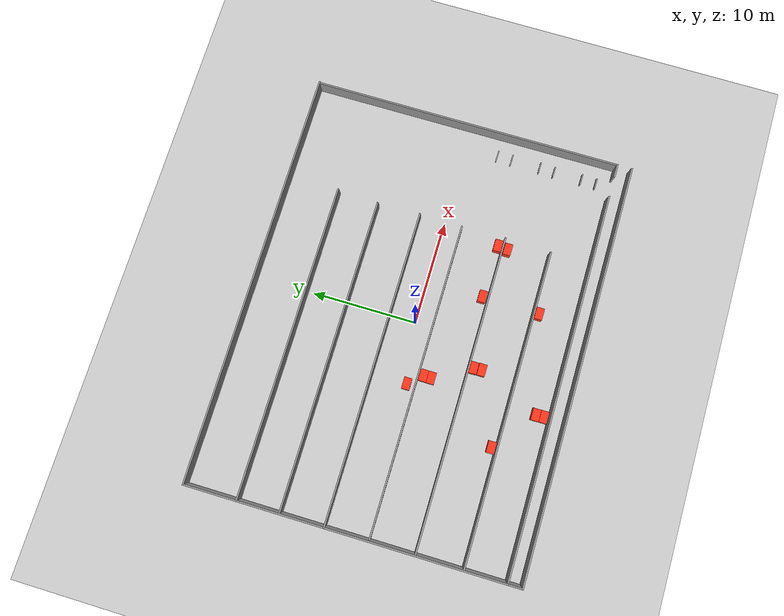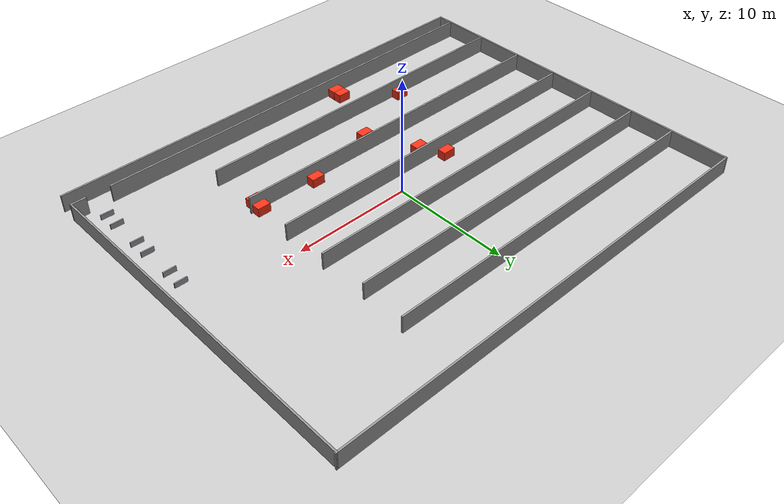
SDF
<sdf version="1.7">
 <world name="default">
  <model name="ground_plane">
   <static>1</static>
   <link name="link">
    <collision name="collision">
     <geometry><plane><normal>0 0 1</normal><size>100 100</size></plane></geometry>
     <surface>
      <contact><collide_bitmask>65535</collide_bitmask></contact>
      <friction>
       <ode><mu>200</mu><mu2>200</mu2><fdir1>0 0 0</fdir1><slip1>0</slip1><slip2>0</slip2></ode>
       <torsional>
        <coefficient>1</coefficient>
        <use_patch_radius>1</use_patch_radius>
        <patch_radius>0.1</patch_radius>
        <ode><slip>0</slip></ode>
       </torsional>
      </friction>
     </surface>
    </collision>
    <visual name="visual">
     <cast_shadows>0</cast_shadows>
     <geometry><plane><normal>0 0 1</normal><size>100 100</size></plane></geometry>
     <material>
      <script><uri>file://media/materials/scripts/gazebo.material</uri><name>Gazebo/Grey</name></script>
     </material>
    </visual>
   </link>
  </model>
  <model name="factory_depo">
   <pose>-0.011575 -0.0218 -0.015891 0 -0 0</pose>
   <link name="Wall_11">
    <pose>0.00391 -14.2501 0 0 -0 0.001782</pose>
    <visual name="Wall_11_Visual_0">
     <pose>-1.64591 0 0.75 0 -0 0</pose>
     <geometry><box><size>36.7082 0.15 1.5</size></box></geometry>
     <material>
      <script><uri>file://media/materials/scripts/gazebo.material</uri><name>Gazebo/Grey</name></script>
      <ambient>1 1 1 1</ambient>
     </material>
     <meta><layer>0</layer></meta>
    </visual>
    <collision name="Wall_11_Collision_0">
     <geometry><box><size>36.7082 0.15 1.5</size></box></geometry>
     <pose>-1.64591 0 0.75 0 -0 0</pose>
     <surface><friction><ode><mu>10</mu><mu2>10</mu2><slip1>0</slip1><slip2>0</slip2></ode></friction></surface>
    </collision>
    <visual name="Wall_11_Visual_1">
     <pose>19.3541 0 0.75 0 -0 0</pose>
     <geometry><box><size>1.29181 0.15 1.5</size></box></geometry>
     <material>
      <script><uri>file://media/materials/scripts/gazebo.material</uri><name>Gazebo/Grey</name></script>
      <ambient>1 1 1 1</ambient>
     </material>
     <meta><layer>0</layer></meta>
    </visual>
    <collision name="Wall_11_Collision_1">
     <geometry><box><size>1.29181 0.15 1.5</size></box></geometry>
     <pose>19.3541 0 0.75 0 -0 0</pose>
     <surface><friction><ode><mu>10</mu><mu2>10</mu2><slip1>0</slip1><slip2>0</slip2></ode></friction></surface>
    </collision>
   </link>
   <link name="Wall_13">
    <collision name="Wall_13_Collision">
     <geometry><box><size>30 0.15 1.5</size></box></geometry>
     <pose>0 0 0.75 0 -0 0</pose>
     <surface><friction><ode><mu>10</mu><mu2>10</mu2><slip1>0</slip1><slip2>0</slip2></ode></friction></surface>
    </collision>
    <visual name="Wall_13_Visual">
     <pose>0 0 0.75 0 -0 0</pose>
     <geometry><box><size>30 0.15 1.5</size></box></geometry>
     <material>
      <script><uri>file://media/materials/scripts/gazebo.material</uri><name>Gazebo/Grey</name></script>
      <ambient>1 1 1 1</ambient>
     </material>
     <meta><layer>0</layer></meta>
    </visual>
    <pose>19.8934 0.710432 0 0 -0 1.57317</pose>
   </link>
   <link name="Wall_15">
    <collision name="Wall_15_Collision">
     <geometry><box><size>40 0.15 1.5</size></box></geometry>
     <pose>0 0 0.75 0 -0 0</pose>
     <surface><friction><ode><mu>10</mu><mu2>10</mu2><slip1>0</slip1><slip2>0</slip2></ode></friction></surface>
    </collision>
    <visual name="Wall_15_Visual">
     <pose>0 0 0.75 0 -0 0</pose>
     <geometry><box><size>40 0.15 1.5</size></box></geometry>
     <material>
      <script><uri>file://media/materials/scripts/gazebo.material</uri><name>Gazebo/Grey</name></script>
      <ambient>1 1 1 1</ambient>
     </material>
     <meta><layer>0</layer></meta>
    </visual>
    <pose>0.00391 15.6354 0 0 -0 0</pose>
   </link>
   <link name="Wall_27">
    <collision name="Wall_27_Collision">
     <geometry><box><size>30 0.15 1.5</size></box></geometry>
     <pose>0 0 0.75 0 -0 0</pose>
     <surface><friction><ode><mu>10</mu><mu2>10</mu2><slip1>0</slip1><slip2>0</slip2></ode></friction></surface>
    </collision>
    <visual name="Wall_27_Visual">
     <pose>0 0 0.75 0 -0 0</pose>
     <geometry><box><size>30 0.15 1.5</size></box></geometry>
     <material>
      <script><uri>file://media/materials/scripts/gazebo.material</uri><name>Gazebo/Grey</name></script>
      <ambient>1 1 1 1</ambient>
     </material>
     <meta><layer>0</layer></meta>
    </visual>
    <pose>-4.88109 10.6354 0 0 -0 0</pose>
   </link>
   <link name="Wall_31">
    <collision name="Wall_31_Collision">
     <geometry><box><size>29.75 0.15 1.5</size></box></geometry>
     <pose>0 0 0.75 0 -0 0</pose>
     <surface><friction><ode><mu>10</mu><mu2>10</mu2><slip1>0</slip1><slip2>0</slip2></ode></friction></surface>
    </collision>
    <visual name="Wall_31_Visual">
     <pose>0 0 0.75 0 -0 0</pose>
     <geometry><box><size>29.75 0.15 1.5</size></box></geometry>
     <material>
      <script><uri>file://media/materials/scripts/gazebo.material</uri><name>Gazebo/Grey</name></script>
      <ambient>1 1 1 1</ambient>
     </material>
     <meta><layer>0</layer></meta>
    </visual>
    <pose>-4.96609 6.64743 0 0 -0 0</pose>
   </link>
   <link name="Wall_33">
    <collision name="Wall_33_Collision">
     <geometry><box><size>30 0.15 1.5</size></box></geometry>
     <pose>0 0 0.75 0 -0 0</pose>
     <surface><friction><ode><mu>10</mu><mu2>10</mu2><slip1>0</slip1><slip2>0</slip2></ode></friction></surface>
    </collision>
    <visual name="Wall_33_Visual">
     <pose>0 0 0.75 0 -0 0</pose>
     <geometry><box><size>30 0.15 1.5</size></box></geometry>
     <material>
      <script><uri>file://media/materials/scripts/gazebo.material</uri><name>Gazebo/Grey</name></script>
      <ambient>1 1 1 1</ambient>
     </material>
     <meta><layer>0</layer></meta>
    </visual>
    <pose>-5.00409 2.49743 0 0 -0 0</pose>
   </link>
   <link name="Wall_35">
    <collision name="Wall_35_Collision">
     <geometry><box><size>29.75 0.15 1.5</size></box></geometry>
     <pose>0 0 0.75 0 -0 0</pose>
     <surface><friction><ode><mu>10</mu><mu2>10</mu2><slip1>0</slip1><slip2>0</slip2></ode></friction></surface>
    </collision>
    <visual name="Wall_35_Visual">
     <pose>0 0 0.75 0 -0 0</pose>
     <geometry><box><size>29.75 0.15 1.5</size></box></geometry>
     <material>
      <script><uri>file://media/materials/scripts/gazebo.material</uri><name>Gazebo/Grey</name></script>
      <ambient>1 1 1 1</ambient>
     </material>
     <meta><layer>0</layer></meta>
    </visual>
    <pose>-4.92909 -1.64033 0 0 -0 0</pose>
   </link>
   <link name="Wall_38">
    <collision name="Wall_38_Collision">
     <geometry><box><size>30 0.15 1.5</size></box></geometry>
     <pose>0 0 0.75 0 -0 0</pose>
     <surface><friction><ode><mu>10</mu><mu2>10</mu2><slip1>0</slip1><slip2>0</slip2></ode></friction></surface>
    </collision>
    <visual name="Wall_38_Visual">
     <pose>0 0 0.75 0 -0 0</pose>
     <geometry><box><size>30 0.15 1.5</size></box></geometry>
     <material>
      <script><uri>file://media/materials/scripts/gazebo.material</uri><name>Gazebo/Grey</name></script>
      <ambient>1 1 1 1</ambient>
     </material>
     <meta><layer>0</layer></meta>
    </visual>
    <pose>-4.98909 -5.87657 0 0 -0 0</pose>
   </link>
   <link name="Wall_41">
    <collision name="Wall_41_Collision">
     <geometry><box><size>29.75 0.15 1.5</size></box></geometry>
     <pose>0 0 0.75 0 -0 0</pose>
     <surface><friction><ode><mu>10</mu><mu2>10</mu2><slip1>0</slip1><slip2>0</slip2></ode></friction></surface>
    </collision>
    <visual name="Wall_41_Visual">
     <pose>0 0 0.75 0 -0 0</pose>
     <geometry><box><size>29.75 0.15 1.5</size></box></geometry>
     <material>
      <script><uri>file://media/materials/scripts/gazebo.material</uri><name>Gazebo/Grey</name></script>
      <ambient>1 1 1 1</ambient>
     </material>
     <meta><layer>0</layer></meta>
    </visual>
    <pose>-4.99109 -10.3066 0 0 -0 0</pose>
   </link>
   <link name="Wall_43">
    <collision name="Wall_43_Collision">
     <geometry><box><size>1.5 0.15 1.5</size></box></geometry>
     <pose>0 0 0.75 0 -0 0</pose>
     <surface><friction><ode><mu>10</mu><mu2>10</mu2><slip1>0</slip1><slip2>0</slip2></ode></friction></surface>
    </collision>
    <visual name="Wall_43_Visual">
     <pose>0 0 0.75 0 -0 0</pose>
     <geometry><box><size>1.5 0.15 1.5</size></box></geometry>
     <material>
      <script><uri>file://media/materials/scripts/gazebo.material</uri><name>Gazebo/Grey</name></script>
      <ambient>1 1 1 1</ambient>
     </material>
     <meta><layer>0</layer></meta>
    </visual>
    <pose>-19.9211 -14.9606 0 0 -0 -1.5708</pose>
   </link>
   <link name="Wall_45">
    <collision name="Wall_45_Collision">
     <geometry><box><size>40 0.15 1.5</size></box></geometry>
     <pose>0 0 0.75 0 -0 0</pose>
     <surface><friction><ode><mu>10</mu><mu2>10</mu2><slip1>0</slip1><slip2>0</slip2></ode></friction></surface>
    </collision>
    <visual name="Wall_45_Visual">
     <pose>0 0 0.75 0 -0 0</pose>
     <geometry><box><size>40 0.15 1.5</size></box></geometry>
     <material>
      <script><uri>file://media/materials/scripts/gazebo.material</uri><name>Gazebo/Grey</name></script>
      <ambient>1 1 1 1</ambient>
     </material>
     <meta><layer>0</layer></meta>
    </visual>
    <pose>0.00391 -15.6356 0 0 -0 0</pose>
   </link>
   <link name="Wall_9">
    <collision name="Wall_9_Collision">
     <geometry><box><size>30.071 0.15 1.5</size></box></geometry>
     <pose>0 0 0.75 0 -0 0</pose>
     <surface><friction><ode><mu>10</mu><mu2>10</mu2><slip1>0</slip1><slip2>0</slip2></ode></friction></surface>
    </collision>
    <visual name="Wall_9_Visual">
     <pose>0 0 0.75 0 -0 0</pose>
     <geometry><box><size>30.071 0.15 1.5</size></box></geometry>
     <material>
      <script><uri>file://media/materials/scripts/gazebo.material</uri><name>Gazebo/Grey</name></script>
      <ambient>1 1 1 1</ambient>
     </material>
     <meta><layer>0</layer></meta>
    </visual>
    <pose>-19.9211 0.674932 0 0 -0 1.5708</pose>
   </link>
   <static>1</static>
  </model>
  <model name="payload_box_clone_5">
   <link name="link">
    <inertial>
     <mass>15</mass>
     <inertia><ixx>2.32332</ixx><ixy>0</ixy><ixz>0</ixz><iyy>1.43272</iyy><iyz>0</iyz><izz>2.2858</izz></inertia>
    </inertial>
    <visual name="visual">
     <geometry><box><size>0.747047 1.12719 0.766877</size></box></geometry>
     <material>
      <script><name>Gazebo/Grey</name><uri>file://media/materials/scripts/gazebo.material</uri></script>
      <shader type="pixel"><normal_map>__default__</normal_map></shader>
      <ambient>1 0.2 0.1 0</ambient>
      <diffuse>0.7 0.7 0.7 1</diffuse>
      <specular>0.01 0.01 0.01 1</specular>
      <emissive>0 0 0 1</emissive>
     </material>
    </visual>
    <collision name="collision">
     <geometry><box><size>0.747047 1.12719 0.766877</size></box></geometry>
     <surface>
      <friction>
       <ode><mu>1</mu><mu2>1</mu2><fdir1>0 0 0</fdir1><slip1>0</slip1><slip2>0</slip2></ode>
       <torsional>
        <coefficient>1</coefficient>
        <patch_radius>0</patch_radius>
        <surface_radius>0</surface_radius>
        <use_patch_radius>1</use_patch_radius>
        <ode><slip>0</slip></ode>
       </torsional>
      </friction>
      <bounce><restitution_coefficient>0</restitution_coefficient><threshold>1e+06</threshold></bounce>
      <contact>
       <collide_without_contact>0</collide_without_contact>
       <collide_without_contact_bitmask>1</collide_without_contact_bitmask>
       <collide_bitmask>1</collide_bitmask>
       <ode>
        <soft_cfm>0</soft_cfm>
        <soft_erp>0.2</soft_erp>
        <kp>1e+13</kp>
        <kd>1</kd>
        <max_vel>0.01</max_vel>
        <min_depth>0</min_depth>
       </ode>
       <bullet>
        <split_impulse>1</split_impulse>
        <split_impulse_penetration_threshold>-0.01</split_impulse_penetration_threshold>
        <soft_cfm>0</soft_cfm>
        <soft_erp>0.2</soft_erp>
        <kp>1e+13</kp>
        <kd>1</kd>
       </bullet>
      </contact>
     </surface>
    </collision>
   </link>
   <static>0</static>
   <pose>-5.04823 -13.7583 0.383438 0 -0 1.5709</pose>
  </model>
  <model name="payload_box_clone_5_clone">
   <link name="link">
    <inertial>
     <mass>15</mass>
     <inertia><ixx>2.32332</ixx><ixy>0</ixy><ixz>0</ixz><iyy>1.43272</iyy><iyz>0</iyz><izz>2.2858</izz></inertia>
    </inertial>
    <visual name="visual">
     <geometry><box><size>0.747047 1.12719 0.766877</size></box></geometry>
     <material>
      <script><name>Gazebo/Grey</name><uri>file://media/materials/scripts/gazebo.material</uri></script>
      <shader type="pixel"><normal_map>__default__</normal_map></shader>
      <ambient>1 0.2 0.1 0</ambient>
      <diffuse>0.7 0.7 0.7 1</diffuse>
      <specular>0.01 0.01 0.01 1</specular>
      <emissive>0 0 0 1</emissive>
     </material>
    </visual>
    <collision name="collision">
     <geometry><box><size>0.747047 1.12719 0.766877</size></box></geometry>
     <surface>
      <friction>
       <ode><mu>1</mu><mu2>1</mu2><fdir1>0 0 0</fdir1><slip1>0</slip1><slip2>0</slip2></ode>
       <torsional>
        <coefficient>1</coefficient>
        <patch_radius>0</patch_radius>
        <surface_radius>0</surface_radius>
        <use_patch_radius>1</use_patch_radius>
        <ode><slip>0</slip></ode>
       </torsional>
      </friction>
      <bounce><restitution_coefficient>0</restitution_coefficient><threshold>1e+06</threshold></bounce>
      <contact>
       <collide_without_contact>0</collide_without_contact>
       <collide_without_contact_bitmask>1</collide_without_contact_bitmask>
       <collide_bitmask>1</collide_bitmask>
       <ode>
        <soft_cfm>0</soft_cfm>
        <soft_erp>0.2</soft_erp>
        <kp>1e+13</kp>
        <kd>1</kd>
        <max_vel>0.01</max_vel>
        <min_depth>0</min_depth>
       </ode>
       <bullet>
        <split_impulse>1</split_impulse>
        <split_impulse_penetration_threshold>-0.01</split_impulse_penetration_threshold>
        <soft_cfm>0</soft_cfm>
        <soft_erp>0.2</soft_erp>
        <kp>1e+13</kp>
        <kd>1</kd>
       </bullet>
      </contact>
     </surface>
    </collision>
   </link>
   <static>0</static>
   <pose>-5.06235 -13.0022 0.383438 0 -0 1.5709</pose>
  </model>
  <model name="payload_box_clone_5_clone_0">
   <link name="link">
    <inertial>
     <mass>15</mass>
     <inertia><ixx>2.32332</ixx><ixy>0</ixy><ixz>0</ixz><iyy>1.43272</iyy><iyz>0</iyz><izz>2.2858</izz></inertia>
    </inertial>
    <visual name="visual">
     <geometry><box><size>0.747047 1.12719 0.766877</size></box></geometry>
     <material>
      <script><name>Gazebo/Grey</name><uri>file://media/materials/scripts/gazebo.material</uri></script>
      <shader type="pixel"><normal_map>__default__</normal_map></shader>
      <ambient>1 0.2 0.1 0</ambient>
      <diffuse>0.7 0.7 0.7 1</diffuse>
      <specular>0.01 0.01 0.01 1</specular>
      <emissive>0 0 0 1</emissive>
     </material>
    </visual>
    <collision name="collision">
     <geometry><box><size>0.747047 1.12719 0.766877</size></box></geometry>
     <surface>
      <friction>
       <ode><mu>1</mu><mu2>1</mu2><fdir1>0 0 0</fdir1><slip1>0</slip1><slip2>0</slip2></ode>
       <torsional>
        <coefficient>1</coefficient>
        <patch_radius>0</patch_radius>
        <surface_radius>0</surface_radius>
        <use_patch_radius>1</use_patch_radius>
        <ode><slip>0</slip></ode>
       </torsional>
      </friction>
      <bounce><restitution_coefficient>0</restitution_coefficient><threshold>1e+06</threshold></bounce>
      <contact>
       <collide_without_contact>0</collide_without_contact>
       <collide_without_contact_bitmask>1</collide_without_contact_bitmask>
       <collide_bitmask>1</collide_bitmask>
       <ode>
        <soft_cfm>0</soft_cfm>
        <soft_erp>0.2</soft_erp>
        <kp>1e+13</kp>
        <kd>1</kd>
        <max_vel>0.01</max_vel>
        <min_depth>0</min_depth>
       </ode>
       <bullet>
        <split_impulse>1</split_impulse>
        <split_impulse_penetration_threshold>-0.01</split_impulse_penetration_threshold>
        <soft_cfm>0</soft_cfm>
        <soft_erp>0.2</soft_erp>
        <kp>1e+13</kp>
        <kd>1</kd>
       </bullet>
      </contact>
     </surface>
    </collision>
   </link>
   <static>0</static>
   <pose>4.06717 -10.8872 0.383438 0 -0 1.5709</pose>
  </model>
  <model name="payload_box_clone_5_clone_2">
   <link name="link">
    <inertial>
     <mass>15</mass>
     <inertia><ixx>2.32332</ixx><ixy>0</ixy><ixz>0</ixz><iyy>1.43272</iyy><iyz>0</iyz><izz>2.2858</izz></inertia>
    </inertial>
    <visual name="visual">
     <geometry><box><size>0.747047 1.12719 0.766877</size></box></geometry>
     <material>
      <script><name>Gazebo/Grey</name><uri>file://media/materials/scripts/gazebo.material</uri></script>
      <shader type="pixel"><normal_map>__default__</normal_map></shader>
      <ambient>1 0.2 0.1 0</ambient>
      <diffuse>0.7 0.7 0.7 1</diffuse>
      <specular>0.01 0.01 0.01 1</specular>
      <emissive>0 0 0 1</emissive>
     </material>
    </visual>
    <collision name="collision">
     <geometry><box><size>0.747047 1.12719 0.766877</size></box></geometry>
     <surface>
      <friction>
       <ode><mu>1</mu><mu2>1</mu2><fdir1>0 0 0</fdir1><slip1>0</slip1><slip2>0</slip2></ode>
       <torsional>
        <coefficient>1</coefficient>
        <patch_radius>0</patch_radius>
        <surface_radius>0</surface_radius>
        <use_patch_radius>1</use_patch_radius>
        <ode><slip>0</slip></ode>
       </torsional>
      </friction>
      <bounce><restitution_coefficient>0</restitution_coefficient><threshold>1e+06</threshold></bounce>
      <contact>
       <collide_without_contact>0</collide_without_contact>
       <collide_without_contact_bitmask>1</collide_without_contact_bitmask>
       <collide_bitmask>1</collide_bitmask>
       <ode>
        <soft_cfm>0</soft_cfm>
        <soft_erp>0.2</soft_erp>
        <kp>1e+13</kp>
        <kd>1</kd>
        <max_vel>0.01</max_vel>
        <min_depth>0</min_depth>
       </ode>
       <bullet>
        <split_impulse>1</split_impulse>
        <split_impulse_penetration_threshold>-0.01</split_impulse_penetration_threshold>
        <soft_cfm>0</soft_cfm>
        <soft_erp>0.2</soft_erp>
        <kp>1e+13</kp>
        <kd>1</kd>
       </bullet>
      </contact>
     </surface>
    </collision>
   </link>
   <static>0</static>
   <pose>-9.04688 -9.87984 0.383438 0 -0 1.57085</pose>
  </model>
  <model name="payload_box_clone_5_clone_3">
   <link name="link">
    <inertial>
     <mass>15</mass>
     <inertia><ixx>2.32332</ixx><ixy>0</ixy><ixz>0</ixz><iyy>1.43272</iyy><iyz>0</iyz><izz>2.2858</izz></inertia>
    </inertial>
    <visual name="visual">
     <geometry><box><size>0.747047 1.12719 0.766877</size></box></geometry>
     <material>
      <script><name>Gazebo/Grey</name><uri>file://media/materials/scripts/gazebo.material</uri></script>
      <shader type="pixel"><normal_map>__default__</normal_map></shader>
      <ambient>1 0.2 0.1 0</ambient>
      <diffuse>0.7 0.7 0.7 1</diffuse>
      <specular>0.01 0.01 0.01 1</specular>
      <emissive>0 0 0 1</emissive>
     </material>
    </visual>
    <collision name="collision">
     <geometry><box><size>0.747047 1.12719 0.766877</size></box></geometry>
     <surface>
      <friction>
       <ode><mu>1</mu><mu2>1</mu2><fdir1>0 0 0</fdir1><slip1>0</slip1><slip2>0</slip2></ode>
       <torsional>
        <coefficient>1</coefficient>
        <patch_radius>0</patch_radius>
        <surface_radius>0</surface_radius>
        <use_patch_radius>1</use_patch_radius>
        <ode><slip>0</slip></ode>
       </torsional>
      </friction>
      <bounce><restitution_coefficient>0</restitution_coefficient><threshold>1e+06</threshold></bounce>
      <contact>
       <collide_without_contact>0</collide_without_contact>
       <collide_without_contact_bitmask>1</collide_without_contact_bitmask>
       <collide_bitmask>1</collide_bitmask>
       <ode>
        <soft_cfm>0</soft_cfm>
        <soft_erp>0.2</soft_erp>
        <kp>1e+13</kp>
        <kd>1</kd>
        <max_vel>0.01</max_vel>
        <min_depth>0</min_depth>
       </ode>
       <bullet>
        <split_impulse>1</split_impulse>
        <split_impulse_penetration_threshold>-0.01</split_impulse_penetration_threshold>
        <soft_cfm>0</soft_cfm>
        <soft_erp>0.2</soft_erp>
        <kp>1e+13</kp>
        <kd>1</kd>
       </bullet>
      </contact>
     </surface>
    </collision>
   </link>
   <static>0</static>
   <pose>-2.54038 -6.392 0.383438 0 -0 1.5709</pose>
  </model>
  <model name="payload_box_clone_5_clone_4">
   <link name="link">
    <inertial>
     <mass>15</mass>
     <inertia><ixx>2.32332</ixx><ixy>0</ixy><ixz>0</ixz><iyy>1.43272</iyy><iyz>0</iyz><izz>2.2858</izz></inertia>
    </inertial>
    <visual name="visual">
     <geometry><box><size>0.747047 1.12719 0.766877</size></box></geometry>
     <material>
      <script><name>Gazebo/Grey</name><uri>file://media/materials/scripts/gazebo.material</uri></script>
      <shader type="pixel"><normal_map>__default__</normal_map></shader>
      <ambient>1 0.2 0.1 0</ambient>
      <diffuse>0.7 0.7 0.7 1</diffuse>
      <specular>0.01 0.01 0.01 1</specular>
      <emissive>0 0 0 1</emissive>
     </material>
    </visual>
    <collision name="collision">
     <geometry><box><size>0.747047 1.12719 0.766877</size></box></geometry>
     <surface>
      <friction>
       <ode><mu>1</mu><mu2>1</mu2><fdir1>0 0 0</fdir1><slip1>0</slip1><slip2>0</slip2></ode>
       <torsional>
        <coefficient>1</coefficient>
        <patch_radius>0</patch_radius>
        <surface_radius>0</surface_radius>
        <use_patch_radius>1</use_patch_radius>
        <ode><slip>0</slip></ode>
       </torsional>
      </friction>
      <bounce><restitution_coefficient>0</restitution_coefficient><threshold>1e+06</threshold></bounce>
      <contact>
       <collide_without_contact>0</collide_without_contact>
       <collide_without_contact_bitmask>1</collide_without_contact_bitmask>
       <collide_bitmask>1</collide_bitmask>
       <ode>
        <soft_cfm>0</soft_cfm>
        <soft_erp>0.2</soft_erp>
        <kp>1e+13</kp>
        <kd>1</kd>
        <max_vel>0.01</max_vel>
        <min_depth>0</min_depth>
       </ode>
       <bullet>
        <split_impulse>1</split_impulse>
        <split_impulse_penetration_threshold>-0.01</split_impulse_penetration_threshold>
        <soft_cfm>0</soft_cfm>
        <soft_erp>0.2</soft_erp>
        <kp>1e+13</kp>
        <kd>1</kd>
       </bullet>
      </contact>
     </surface>
    </collision>
   </link>
   <static>0</static>
   <pose>-2.51466 -7.17386 0.383438 0 -0 1.5709</pose>
  </model>
  <model name="payload_box_clone_5_clone_5">
   <link name="link">
    <inertial>
     <mass>15</mass>
     <inertia><ixx>2.32332</ixx><ixy>0</ixy><ixz>0</ixz><iyy>1.43272</iyy><iyz>0</iyz><izz>2.2858</izz></inertia>
    </inertial>
    <visual name="visual">
     <geometry><box><size>0.747047 1.12719 0.766877</size></box></geometry>
     <material>
      <script><name>Gazebo/Grey</name><uri>file://media/materials/scripts/gazebo.material</uri></script>
      <shader type="pixel"><normal_map>__default__</normal_map></shader>
      <ambient>1 0.2 0.1 0</ambient>
      <diffuse>0.7 0.7 0.7 1</diffuse>
      <specular>0.01 0.01 0.01 1</specular>
      <emissive>0 0 0 1</emissive>
     </material>
    </visual>
    <collision name="collision">
     <geometry><box><size>0.747047 1.12719 0.766877</size></box></geometry>
     <surface>
      <friction>
       <ode><mu>1</mu><mu2>1</mu2><fdir1>0 0 0</fdir1><slip1>0</slip1><slip2>0</slip2></ode>
       <torsional>
        <coefficient>1</coefficient>
        <patch_radius>0</patch_radius>
        <surface_radius>0</surface_radius>
        <use_patch_radius>1</use_patch_radius>
        <ode><slip>0</slip></ode>
       </torsional>
      </friction>
      <bounce><restitution_coefficient>0</restitution_coefficient><threshold>1e+06</threshold></bounce>
      <contact>
       <collide_without_contact>0</collide_without_contact>
       <collide_without_contact_bitmask>1</collide_without_contact_bitmask>
       <collide_bitmask>1</collide_bitmask>
       <ode>
        <soft_cfm>0</soft_cfm>
        <soft_erp>0.2</soft_erp>
        <kp>1e+13</kp>
        <kd>1</kd>
        <max_vel>0.01</max_vel>
        <min_depth>0</min_depth>
       </ode>
       <bullet>
        <split_impulse>1</split_impulse>
        <split_impulse_penetration_threshold>-0.01</split_impulse_penetration_threshold>
        <soft_cfm>0</soft_cfm>
        <soft_erp>0.2</soft_erp>
        <kp>1e+13</kp>
        <kd>1</kd>
       </bullet>
      </contact>
     </surface>
    </collision>
   </link>
   <static>0</static>
   <pose>9.18464 -6.43208 0.383438 0 -0 1.5709</pose>
  </model>
  <model name="payload_box_clone_5_clone_6">
   <link name="link">
    <inertial>
     <mass>15</mass>
     <inertia><ixx>2.32332</ixx><ixy>0</ixy><ixz>0</ixz><iyy>1.43272</iyy><iyz>0</iyz><izz>2.2858</izz></inertia>
    </inertial>
    <visual name="visual">
     <geometry><box><size>0.747047 1.12719 0.766877</size></box></geometry>
     <material>
      <script><name>Gazebo/Grey</name><uri>file://media/materials/scripts/gazebo.material</uri></script>
      <shader type="pixel"><normal_map>__default__</normal_map></shader>
      <ambient>1 0.2 0.1 0</ambient>
      <diffuse>0.7 0.7 0.7 1</diffuse>
      <specular>0.01 0.01 0.01 1</specular>
      <emissive>0 0 0 1</emissive>
     </material>
    </visual>
    <collision name="collision">
     <geometry><box><size>0.747047 1.12719 0.766877</size></box></geometry>
     <surface>
      <friction>
       <ode><mu>1</mu><mu2>1</mu2><fdir1>0 0 0</fdir1><slip1>0</slip1><slip2>0</slip2></ode>
       <torsional>
        <coefficient>1</coefficient>
        <patch_radius>0</patch_radius>
        <surface_radius>0</surface_radius>
        <use_patch_radius>1</use_patch_radius>
        <ode><slip>0</slip></ode>
       </torsional>
      </friction>
      <bounce><restitution_coefficient>0</restitution_coefficient><threshold>1e+06</threshold></bounce>
      <contact>
       <collide_without_contact>0</collide_without_contact>
       <collide_without_contact_bitmask>1</collide_without_contact_bitmask>
       <collide_bitmask>1</collide_bitmask>
       <ode>
        <soft_cfm>0</soft_cfm>
        <soft_erp>0.2</soft_erp>
        <kp>1e+13</kp>
        <kd>1</kd>
        <max_vel>0.01</max_vel>
        <min_depth>0</min_depth>
       </ode>
       <bullet>
        <split_impulse>1</split_impulse>
        <split_impulse_penetration_threshold>-0.01</split_impulse_penetration_threshold>
        <soft_cfm>0</soft_cfm>
        <soft_erp>0.2</soft_erp>
        <kp>1e+13</kp>
        <kd>1</kd>
       </bullet>
      </contact>
     </surface>
    </collision>
   </link>
   <static>0</static>
   <pose>9.28894 -5.44985 0.383438 0 -0 1.57077</pose>
  </model>
  <model name="payload_box_clone_5_clone_7">
   <link name="link">
    <inertial>
     <mass>15</mass>
     <inertia><ixx>2.32332</ixx><ixy>0</ixy><ixz>0</ixz><iyy>1.43272</iyy><iyz>0</iyz><izz>2.2858</izz></inertia>
    </inertial>
    <visual name="visual">
     <geometry><box><size>0.747047 1.12719 0.766877</size></box></geometry>
     <material>
      <script><name>Gazebo/Grey</name><uri>file://media/materials/scripts/gazebo.material</uri></script>
      <shader type="pixel"><normal_map>__default__</normal_map></shader>
      <ambient>1 0.2 0.1 0</ambient>
      <diffuse>0.7 0.7 0.7 1</diffuse>
      <specular>0.01 0.01 0.01 1</specular>
      <emissive>0 0 0 1</emissive>
     </material>
    </visual>
    <collision name="collision">
     <geometry><box><size>0.747047 1.12719 0.766877</size></box></geometry>
     <surface>
      <friction>
       <ode><mu>1</mu><mu2>1</mu2><fdir1>0 0 0</fdir1><slip1>0</slip1><slip2>0</slip2></ode>
       <torsional>
        <coefficient>1</coefficient>
        <patch_radius>0</patch_radius>
        <surface_radius>0</surface_radius>
        <use_patch_radius>1</use_patch_radius>
        <ode><slip>0</slip></ode>
       </torsional>
      </friction>
      <bounce><restitution_coefficient>0</restitution_coefficient><threshold>1e+06</threshold></bounce>
      <contact>
       <collide_without_contact>0</collide_without_contact>
       <collide_without_contact_bitmask>1</collide_without_contact_bitmask>
       <collide_bitmask>1</collide_bitmask>
       <ode>
        <soft_cfm>0</soft_cfm>
        <soft_erp>0.2</soft_erp>
        <kp>1e+13</kp>
        <kd>1</kd>
        <max_vel>0.01</max_vel>
        <min_depth>0</min_depth>
       </ode>
       <bullet>
        <split_impulse>1</split_impulse>
        <split_impulse_penetration_threshold>-0.01</split_impulse_penetration_threshold>
        <soft_cfm>0</soft_cfm>
        <soft_erp>0.2</soft_erp>
        <kp>1e+13</kp>
        <kd>1</kd>
       </bullet>
      </contact>
     </surface>
    </collision>
   </link>
   <static>0</static>
   <pose>4.14763 -5.3569 0.383438 0 -0 1.5709</pose>
  </model>
  <model name="payload_box_clone_5_clone_8">
   <link name="link">
    <inertial>
     <mass>15</mass>
     <inertia><ixx>2.32332</ixx><ixy>0</ixy><ixz>0</ixz><iyy>1.43272</iyy><iyz>0</iyz><izz>2.2858</izz></inertia>
    </inertial>
    <visual name="visual">
     <geometry><box><size>0.747047 1.12719 0.766877</size></box></geometry>
     <material>
      <script><name>Gazebo/Grey</name><uri>file://media/materials/scripts/gazebo.material</uri></script>
      <shader type="pixel"><normal_map>__default__</normal_map></shader>
      <ambient>1 0.2 0.1 0</ambient>
      <diffuse>0.7 0.7 0.7 1</diffuse>
      <specular>0.01 0.01 0.01 1</specular>
      <emissive>0 0 0 1</emissive>
     </material>
    </visual>
    <collision name="collision">
     <geometry><box><size>0.747047 1.12719 0.766877</size></box></geometry>
     <surface>
      <friction>
       <ode><mu>1</mu><mu2>1</mu2><fdir1>0 0 0</fdir1><slip1>0</slip1><slip2>0</slip2></ode>
       <torsional>
        <coefficient>1</coefficient>
        <patch_radius>0</patch_radius>
        <surface_radius>0</surface_radius>
        <use_patch_radius>1</use_patch_radius>
        <ode><slip>0</slip></ode>
       </torsional>
      </friction>
      <bounce><restitution_coefficient>0</restitution_coefficient><threshold>1e+06</threshold></bounce>
      <contact>
       <collide_without_contact>0</collide_without_contact>
       <collide_without_contact_bitmask>1</collide_without_contact_bitmask>
       <collide_bitmask>1</collide_bitmask>
       <ode>
        <soft_cfm>0</soft_cfm>
        <soft_erp>0.2</soft_erp>
        <kp>1e+13</kp>
        <kd>1</kd>
        <max_vel>0.01</max_vel>
        <min_depth>0</min_depth>
       </ode>
       <bullet>
        <split_impulse>1</split_impulse>
        <split_impulse_penetration_threshold>-0.01</split_impulse_penetration_threshold>
        <soft_cfm>0</soft_cfm>
        <soft_erp>0.2</soft_erp>
        <kp>1e+13</kp>
        <kd>1</kd>
       </bullet>
      </contact>
     </surface>
    </collision>
   </link>
   <static>0</static>
   <pose>-4.5286 -2.14477 0.383438 0 -0 1.57055</pose>
  </model>
  <model name="payload_box_clone_5_clone_9">
   <link name="link">
    <inertial>
     <mass>15</mass>
     <inertia><ixx>2.32332</ixx><ixy>0</ixy><ixz>0</ixz><iyy>1.43272</iyy><iyz>0</iyz><izz>2.2858</izz></inertia>
    </inertial>
    <visual name="visual">
     <geometry><box><size>0.747047 1.12719 0.766877</size></box></geometry>
     <material>
      <script><name>Gazebo/Grey</name><uri>file://media/materials/scripts/gazebo.material</uri></script>
      <shader type="pixel"><normal_map>__default__</normal_map></shader>
      <ambient>1 0.2 0.1 0</ambient>
      <diffuse>0.7 0.7 0.7 1</diffuse>
      <specular>0.01 0.01 0.01 1</specular>
      <emissive>0 0 0 1</emissive>
     </material>
    </visual>
    <collision name="collision">
     <geometry><box><size>0.747047 1.12719 0.766877</size></box></geometry>
     <surface>
      <friction>
       <ode><mu>1</mu><mu2>1</mu2><fdir1>0 0 0</fdir1><slip1>0</slip1><slip2>0</slip2></ode>
       <torsional>
        <coefficient>1</coefficient>
        <patch_radius>0</patch_radius>
        <surface_radius>0</surface_radius>
        <use_patch_radius>1</use_patch_radius>
        <ode><slip>0</slip></ode>
       </torsional>
      </friction>
      <bounce><restitution_coefficient>0</restitution_coefficient><threshold>1e+06</threshold></bounce>
      <contact>
       <collide_without_contact>0</collide_without_contact>
       <collide_without_contact_bitmask>1</collide_without_contact_bitmask>
       <collide_bitmask>1</collide_bitmask>
       <ode>
        <soft_cfm>0</soft_cfm>
        <soft_erp>0.2</soft_erp>
        <kp>1e+13</kp>
        <kd>1</kd>
        <max_vel>0.01</max_vel>
        <min_depth>0</min_depth>
       </ode>
       <bullet>
        <split_impulse>1</split_impulse>
        <split_impulse_penetration_threshold>-0.01</split_impulse_penetration_threshold>
        <soft_cfm>0</soft_cfm>
        <soft_erp>0.2</soft_erp>
        <kp>1e+13</kp>
        <kd>1</kd>
       </bullet>
      </contact>
     </surface>
    </collision>
   </link>
   <static>0</static>
   <pose>-4.53812 -2.89186 0.383438 0 -0 1.57051</pose>
  </model>
  <model name="payload_box_clone_5_clone_12">
   <link name="link">
    <inertial>
     <mass>15</mass>
     <inertia><ixx>2.32332</ixx><ixy>0</ixy><ixz>0</ixz><iyy>1.43272</iyy><iyz>0</iyz><izz>2.2858</izz></inertia>
    </inertial>
    <visual name="visual">
     <geometry><box><size>0.747047 1.12719 0.766877</size></box></geometry>
     <material>
      <script><name>Gazebo/Grey</name><uri>file://media/materials/scripts/gazebo.material</uri></script>
      <shader type="pixel"><normal_map>__default__</normal_map></shader>
      <ambient>1 0.2 0.1 0</ambient>
      <diffuse>0.7 0.7 0.7 1</diffuse>
      <specular>0.01 0.01 0.01 1</specular>
      <emissive>0 0 0 1</emissive>
     </material>
    </visual>
    <collision name="collision">
     <geometry><box><size>0.747047 1.12719 0.766877</size></box></geometry>
     <surface>
      <friction>
       <ode><mu>1</mu><mu2>1</mu2><fdir1>0 0 0</fdir1><slip1>0</slip1><slip2>0</slip2></ode>
       <torsional>
        <coefficient>1</coefficient>
        <patch_radius>0</patch_radius>
        <surface_radius>0</surface_radius>
        <use_patch_radius>1</use_patch_radius>
        <ode><slip>0</slip></ode>
       </torsional>
      </friction>
      <bounce><restitution_coefficient>0</restitution_coefficient><threshold>1e+06</threshold></bounce>
      <contact>
       <collide_without_contact>0</collide_without_contact>
       <collide_without_contact_bitmask>1</collide_without_contact_bitmask>
       <collide_bitmask>1</collide_bitmask>
       <ode>
        <soft_cfm>0</soft_cfm>
        <soft_erp>0.2</soft_erp>
        <kp>1e+13</kp>
        <kd>1</kd>
        <max_vel>0.01</max_vel>
        <min_depth>0</min_depth>
       </ode>
       <bullet>
        <split_impulse>1</split_impulse>
        <split_impulse_penetration_threshold>-0.01</split_impulse_penetration_threshold>
        <soft_cfm>0</soft_cfm>
        <soft_erp>0.2</soft_erp>
        <kp>1e+13</kp>
        <kd>1</kd>
       </bullet>
      </contact>
     </surface>
    </collision>
   </link>
   <static>0</static>
   <pose>-5.67721 -0.873075 0.383438 0 -0 1.5709</pose>
  </model>
  <model name="stand_1_clone_4_legs_clone">
   <static>1</static>
   <link name="walls_link">
    <collision name="left_wall_col">
     <pose>0.72 0 0.225 0 -0 0</pose>
     <geometry><box><size>0.1 1.06 0.45</size></box></geometry>
     <surface><friction><ode><mu>10</mu><mu2>10</mu2><slip1>0</slip1><slip2>0</slip2></ode></friction></surface>
    </collision>
    <visual name="left_wall_vis">
     <pose>0.72 0 0.225 0 -0 0</pose>
     <geometry><box><size>0.1 1.06 0.45</size></box></geometry>
     <material>
      <ambient>0.6 0.6 0.63 1</ambient>
      <diffuse>0.6 0.6 0.63 1</diffuse>
      <specular>0.3 0.3 0.3 1</specular>
     </material>
    </visual>
    <collision name="right_wall_col">
     <pose>-0.72 0 0.225 0 -0 0</pose>
     <geometry><box><size>0.1 1.06 0.45</size></box></geometry>
     <surface><friction><ode><mu>10</mu><mu2>10</mu2><slip1>0</slip1><slip2>0</slip2></ode></friction></surface>
    </collision>
    <visual name="right_wall_vis">
     <pose>-0.72 0 0.225 0 -0 0</pose>
     <geometry><box><size>0.1 1.06 0.45</size></box></geometry>
     <material>
      <ambient>0.6 0.6 0.63 1</ambient>
      <diffuse>0.6 0.6 0.63 1</diffuse>
      <specular>0.3 0.3 0.3 1</specular>
     </material>
    </visual>
    <inertial>
     <mass>25</mass>
     <inertia><ixx>1.4</ixx><iyy>2.1</iyy><izz>3.2</izz><ixy>0</ixy><ixz>0</ixz><iyz>0</iyz></inertia>
    </inertial>
   </link>
   <pose>18 -12.15 0 3e-06 3e-06 -1.58716</pose>
  </model>
  <model name="stand_1_clone_3_legs_clone">
   <static>1</static>
   <link name="walls_link">
    <collision name="left_wall_col">
     <pose>0.72 0 0.225 0 -0 0</pose>
     <geometry><box><size>0.1 1.06 0.45</size></box></geometry>
     <surface><friction><ode><mu>10</mu><mu2>10</mu2><slip1>0</slip1><slip2>0</slip2></ode></friction></surface>
    </collision>
    <visual name="left_wall_vis">
     <pose>0.72 0 0.225 0 -0 0</pose>
     <geometry><box><size>0.1 1.06 0.45</size></box></geometry>
     <material>
      <ambient>0.6 0.6 0.63 1</ambient>
      <diffuse>0.6 0.6 0.63 1</diffuse>
      <specular>0.3 0.3 0.3 1</specular>
     </material>
    </visual>
    <collision name="right_wall_col">
     <pose>-0.72 0 0.225 0 -0 0</pose>
     <geometry><box><size>0.1 1.06 0.45</size></box></geometry>
     <surface><friction><ode><mu>10</mu><mu2>10</mu2><slip1>0</slip1><slip2>0</slip2></ode></friction></surface>
    </collision>
    <visual name="right_wall_vis">
     <pose>-0.72 0 0.225 0 -0 0</pose>
     <geometry><box><size>0.1 1.06 0.45</size></box></geometry>
     <material>
      <ambient>0.6 0.6 0.63 1</ambient>
      <diffuse>0.6 0.6 0.63 1</diffuse>
      <specular>0.3 0.3 0.3 1</specular>
     </material>
    </visual>
    <inertial>
     <mass>25</mass>
     <inertia><ixx>1.4</ixx><iyy>2.1</iyy><izz>3.2</izz><ixy>0</ixy><ixz>0</ixz><iyz>0</iyz></inertia>
    </inertial>
   </link>
   <pose>18 -7.98293 -7e-06 -0 1.4e-05 -1.58655</pose>
  </model>
  <model name="stand_1_clone_2_legs_clone">
   <static>1</static>
   <link name="walls_link">
    <collision name="left_wall_col">
     <pose>0.72 0 0.225 0 -0 0</pose>
     <geometry><box><size>0.1 1.06 0.45</size></box></geometry>
     <surface><friction><ode><mu>10</mu><mu2>10</mu2><slip1>0</slip1><slip2>0</slip2></ode></friction></surface>
    </collision>
    <visual name="left_wall_vis">
     <pose>0.72 0 0.225 0 -0 0</pose>
     <geometry><box><size>0.1 1.06 0.45</size></box></geometry>
     <material>
      <ambient>0.6 0.6 0.63 1</ambient>
      <diffuse>0.6 0.6 0.63 1</diffuse>
      <specular>0.3 0.3 0.3 1</specular>
     </material>
    </visual>
    <collision name="right_wall_col">
     <pose>-0.72 0 0.225 0 -0 0</pose>
     <geometry><box><size>0.1 1.06 0.45</size></box></geometry>
     <surface><friction><ode><mu>10</mu><mu2>10</mu2><slip1>0</slip1><slip2>0</slip2></ode></friction></surface>
    </collision>
    <visual name="right_wall_vis">
     <pose>-0.72 0 0.225 0 -0 0</pose>
     <geometry><box><size>0.1 1.06 0.45</size></box></geometry>
     <material>
      <ambient>0.6 0.6 0.63 1</ambient>
      <diffuse>0.6 0.6 0.63 1</diffuse>
      <specular>0.3 0.3 0.3 1</specular>
     </material>
    </visual>
    <inertial>
     <mass>25</mass>
     <inertia><ixx>1.4</ixx><iyy>2.1</iyy><izz>3.2</izz><ixy>0</ixy><ixz>0</ixz><iyz>0</iyz></inertia>
    </inertial>
   </link>
   <pose>18 -3.72649 -5e-06 1.7e-05 -0 -1.58623</pose>
  </model>
 </world>
</sdf>
